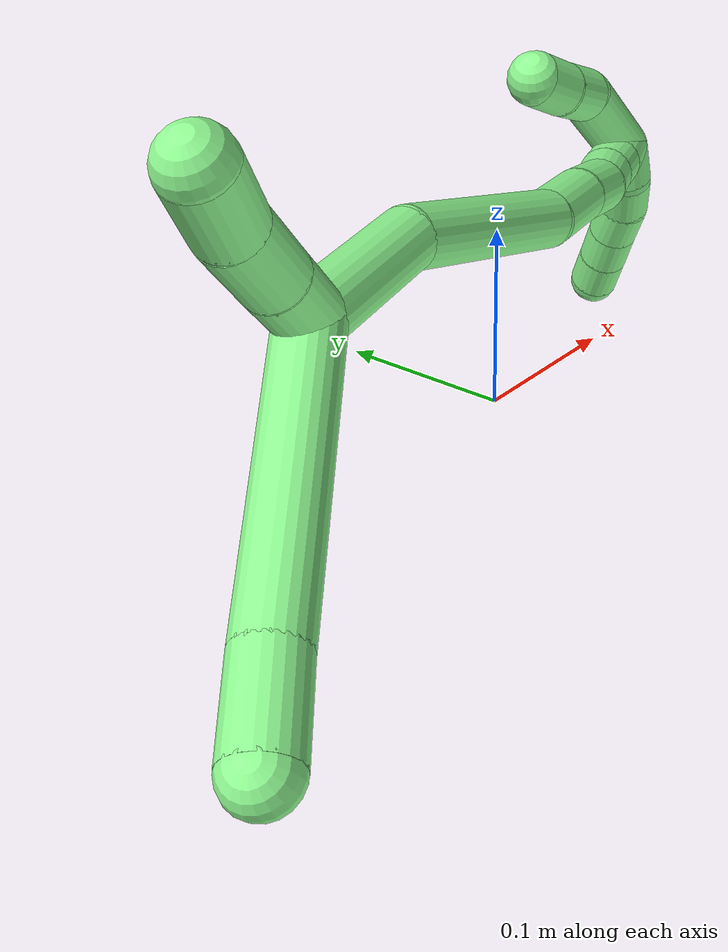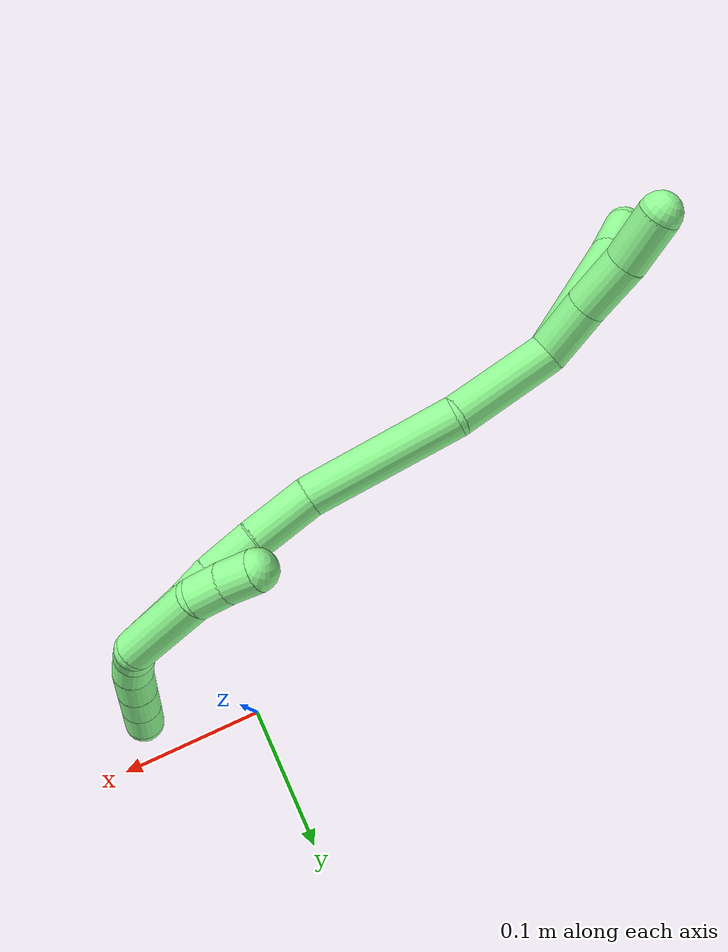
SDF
<sdf version="1.7">
 <world name="default">
  <model name="13">
   <static>0</static>
   <link name="13">
    <collision name="collision-cylinder-e_1_2_8">
     <pose>-0.038521 -0.042957 0.004846 1.45845 -0.727864 -0.65609</pose>
     <geometry><cylinder><radius>0.0125</radius><length>0.115803</length></cylinder></geometry>
     <surface>
      <friction><ode><mu>1.16</mu><mu2>1.16</mu2><slip1>0</slip1><slip2>0</slip2></ode></friction>
      <contact><ode><kp>1e+06</kp><kd>1</kd><max_vel>0</max_vel><min_depth>0.001</min_depth></ode></contact>
     </surface>
    </collision>
    <visual name="visual-cylinder-e_1_2_8">
     <pose>-0.038521 -0.042957 0.004846 1.45845 -0.727864 -0.65609</pose>
     <geometry><cylinder><radius>0.0125</radius><length>0.115803</length></cylinder></geometry>
     <material><ambient>0.564706 0.984314 0.572549 1</ambient></material>
    </visual>
    <collision name="collision-cylinder-e_2_8_6">
     <pose>-0.087606 -0.099129 0.012162 1.38608 -0.666024 -0.559441</pose>
     <geometry><cylinder><radius>0.0125</radius><length>0.034197</length></cylinder></geometry>
     <surface>
      <friction><ode><mu>1.16</mu><mu2>1.16</mu2><slip1>0</slip1><slip2>0</slip2></ode></friction>
      <contact><ode><kp>1e+06</kp><kd>1</kd><max_vel>0</max_vel><min_depth>0.001</min_depth></ode></contact>
     </surface>
    </collision>
    <visual name="visual-cylinder-e_2_8_6">
     <pose>-0.087606 -0.099129 0.012162 1.38608 -0.666024 -0.559441</pose>
     <geometry><cylinder><radius>0.0125</radius><length>0.034197</length></cylinder></geometry>
     <material><ambient>0.564706 0.984314 0.572549 1</ambient></material>
    </visual>
    <collision name="collision-cylinder-e_1_2_9">
     <pose>-0.003287 -0.002539 0.017444 0.144521 -0.184344 -0.013382</pose>
     <geometry><cylinder><radius>0.0125</radius><length>0.035863</length></cylinder></geometry>
     <surface>
      <friction><ode><mu>1.16</mu><mu2>1.16</mu2><slip1>0</slip1><slip2>0</slip2></ode></friction>
      <contact><ode><kp>1e+06</kp><kd>1</kd><max_vel>0</max_vel><min_depth>0.001</min_depth></ode></contact>
     </surface>
    </collision>
    <visual name="visual-cylinder-e_1_2_9">
     <pose>-0.003287 -0.002539 0.017444 0.144521 -0.184344 -0.013382</pose>
     <geometry><cylinder><radius>0.0125</radius><length>0.035863</length></cylinder></geometry>
     <material><ambient>0.564706 0.984314 0.572549 1</ambient></material>
    </visual>
    <collision name="collision-cylinder-e_2_9_10">
     <pose>-0.009419 -0.006326 0.051171 0.076524 -0.172523 -0.006621</pose>
     <geometry><cylinder><radius>0.0125</radius><length>0.033154</length></cylinder></geometry>
     <surface>
      <friction><ode><mu>1.16</mu><mu2>1.16</mu2><slip1>0</slip1><slip2>0</slip2></ode></friction>
      <contact><ode><kp>1e+06</kp><kd>1</kd><max_vel>0</max_vel><min_depth>0.001</min_depth></ode></contact>
     </surface>
    </collision>
    <visual name="visual-cylinder-e_2_9_10">
     <pose>-0.009419 -0.006326 0.051171 0.076524 -0.172523 -0.006621</pose>
     <geometry><cylinder><radius>0.0125</radius><length>0.033154</length></cylinder></geometry>
     <material><ambient>0.564706 0.984314 0.572549 1</ambient></material>
    </visual>
    <collision name="collision-cylinder-e_3_10_5">
     <pose>-0.012841 -0.009142 0.082855 0.101414 -0.037203 -0.001888</pose>
     <geometry><cylinder><radius>0.0125</radius><length>0.030983</length></cylinder></geometry>
     <surface>
      <friction><ode><mu>1.16</mu><mu2>1.16</mu2><slip1>0</slip1><slip2>0</slip2></ode></friction>
      <contact><ode><kp>1e+06</kp><kd>1</kd><max_vel>0</max_vel><min_depth>0.001</min_depth></ode></contact>
     </surface>
    </collision>
    <visual name="visual-cylinder-e_3_10_5">
     <pose>-0.012841 -0.009142 0.082855 0.101414 -0.037203 -0.001888</pose>
     <geometry><cylinder><radius>0.0125</radius><length>0.030983</length></cylinder></geometry>
     <material><ambient>0.564706 0.984314 0.572549 1</ambient></material>
    </visual>
    <collision name="collision-cylinder-e_1_2_11">
     <pose>0.0267 0.012579 -0.016906 -2.5019 0.902651 -1.94265</pose>
     <geometry><cylinder><radius>0.0125</radius><length>0.068029</length></cylinder></geometry>
     <surface>
      <friction><ode><mu>1.16</mu><mu2>1.16</mu2><slip1>0</slip1><slip2>0</slip2></ode></friction>
      <contact><ode><kp>1e+06</kp><kd>1</kd><max_vel>0</max_vel><min_depth>0.001</min_depth></ode></contact>
     </surface>
    </collision>
    <visual name="visual-cylinder-e_1_2_11">
     <pose>0.0267 0.012579 -0.016906 -2.5019 0.902651 -1.94265</pose>
     <geometry><cylinder><radius>0.0125</radius><length>0.068029</length></cylinder></geometry>
     <material><ambient>0.564706 0.984314 0.572549 1</ambient></material>
    </visual>
    <collision name="collision-cylinder-e_2_11_12">
     <pose>0.087948 0.031241 -0.067628 -2.96363 0.788142 -2.71888</pose>
     <geometry><cylinder><radius>0.0125</radius><length>0.097448</length></cylinder></geometry>
     <surface>
      <friction><ode><mu>1.16</mu><mu2>1.16</mu2><slip1>0</slip1><slip2>0</slip2></ode></friction>
      <contact><ode><kp>1e+06</kp><kd>1</kd><max_vel>0</max_vel><min_depth>0.001</min_depth></ode></contact>
     </surface>
    </collision>
    <visual name="visual-cylinder-e_2_11_12">
     <pose>0.087948 0.031241 -0.067628 -2.96363 0.788142 -2.71888</pose>
     <geometry><cylinder><radius>0.0125</radius><length>0.097448</length></cylinder></geometry>
     <material><ambient>0.564706 0.984314 0.572549 1</ambient></material>
    </visual>
    <collision name="collision-cylinder-e_3_12_13">
     <pose>0.136946 0.04464 -0.113691 -2.60308 0.791836 -1.97456</pose>
     <geometry><cylinder><radius>0.0125</radius><length>0.040612</length></cylinder></geometry>
     <surface>
      <friction><ode><mu>1.16</mu><mu2>1.16</mu2><slip1>0</slip1><slip2>0</slip2></ode></friction>
      <contact><ode><kp>1e+06</kp><kd>1</kd><max_vel>0</max_vel><min_depth>0.001</min_depth></ode></contact>
     </surface>
    </collision>
    <visual name="visual-cylinder-e_3_12_13">
     <pose>0.136946 0.04464 -0.113691 -2.60308 0.791836 -1.97456</pose>
     <geometry><cylinder><radius>0.0125</radius><length>0.040612</length></cylinder></geometry>
     <material><ambient>0.564706 0.984314 0.572549 1</ambient></material>
    </visual>
    <collision name="collision-cylinder-e_4_13_14">
     <pose>0.161899 0.057406 -0.136722 -2.67367 0.715551 -2.00657</pose>
     <geometry><cylinder><radius>0.0125</radius><length>0.03202</length></cylinder></geometry>
     <surface>
      <friction><ode><mu>1.16</mu><mu2>1.16</mu2><slip1>0</slip1><slip2>0</slip2></ode></friction>
      <contact><ode><kp>1e+06</kp><kd>1</kd><max_vel>0</max_vel><min_depth>0.001</min_depth></ode></contact>
     </surface>
    </collision>
    <visual name="visual-cylinder-e_4_13_14">
     <pose>0.161899 0.057406 -0.136722 -2.67367 0.715551 -2.00657</pose>
     <geometry><cylinder><radius>0.0125</radius><length>0.03202</length></cylinder></geometry>
     <material><ambient>0.564706 0.984314 0.572549 1</ambient></material>
    </visual>
    <collision name="collision-cylinder-e_5_14_15">
     <pose>0.178972 0.068109 -0.153437 -2.41668 0.692307 -1.5207</pose>
     <geometry><cylinder><radius>0.0125</radius><length>0.020584</length></cylinder></geometry>
     <surface>
      <friction><ode><mu>1.16</mu><mu2>1.16</mu2><slip1>0</slip1><slip2>0</slip2></ode></friction>
      <contact><ode><kp>1e+06</kp><kd>1</kd><max_vel>0</max_vel><min_depth>0.001</min_depth></ode></contact>
     </surface>
    </collision>
    <visual name="visual-cylinder-e_5_14_15">
     <pose>0.178972 0.068109 -0.153437 -2.41668 0.692307 -1.5207</pose>
     <geometry><cylinder><radius>0.0125</radius><length>0.020584</length></cylinder></geometry>
     <material><ambient>0.564706 0.984314 0.572549 1</ambient></material>
    </visual>
    <collision name="collision-cylinder-e_6_15_16">
     <pose>0.192472 0.078028 -0.165099 -2.45838 0.75332 -1.67721</pose>
     <geometry><cylinder><radius>0.0125</radius><length>0.020264</length></cylinder></geometry>
     <surface>
      <friction><ode><mu>1.16</mu><mu2>1.16</mu2><slip1>0</slip1><slip2>0</slip2></ode></friction>
      <contact><ode><kp>1e+06</kp><kd>1</kd><max_vel>0</max_vel><min_depth>0.001</min_depth></ode></contact>
     </surface>
    </collision>
    <visual name="visual-cylinder-e_6_15_16">
     <pose>0.192472 0.078028 -0.165099 -2.45838 0.75332 -1.67721</pose>
     <geometry><cylinder><radius>0.0125</radius><length>0.020264</length></cylinder></geometry>
     <material><ambient>0.564706 0.984314 0.572549 1</ambient></material>
    </visual>
    <collision name="collision-cylinder-e_7_16_1">
     <pose>0.206974 0.088133 -0.175709 -2.30191 0.80309 -1.52083</pose>
     <geometry><cylinder><radius>0.0125</radius><length>0.021044</length></cylinder></geometry>
     <surface>
      <friction><ode><mu>1.16</mu><mu2>1.16</mu2><slip1>0</slip1><slip2>0</slip2></ode></friction>
      <contact><ode><kp>1e+06</kp><kd>1</kd><max_vel>0</max_vel><min_depth>0.001</min_depth></ode></contact>
     </surface>
    </collision>
    <visual name="visual-cylinder-e_7_16_1">
     <pose>0.206974 0.088133 -0.175709 -2.30191 0.80309 -1.52083</pose>
     <geometry><cylinder><radius>0.0125</radius><length>0.021044</length></cylinder></geometry>
     <material><ambient>0.564706 0.984314 0.572549 1</ambient></material>
    </visual>
    <collision name="collision-cylinder-e_1_1_17">
     <pose>0.204433 0.09265 -0.152742 0.033159 -0.348158 -0.005832</pose>
     <geometry><cylinder><radius>0.0125</radius><length>0.05928</length></cylinder></geometry>
     <surface>
      <friction><ode><mu>1.16</mu><mu2>1.16</mu2><slip1>0</slip1><slip2>0</slip2></ode></friction>
      <contact><ode><kp>1e+06</kp><kd>1</kd><max_vel>0</max_vel><min_depth>0.001</min_depth></ode></contact>
     </surface>
    </collision>
    <visual name="visual-cylinder-e_1_1_17">
     <pose>0.204433 0.09265 -0.152742 0.033159 -0.348158 -0.005832</pose>
     <geometry><cylinder><radius>0.0125</radius><length>0.05928</length></cylinder></geometry>
     <material><ambient>0.564706 0.984314 0.572549 1</ambient></material>
    </visual>
    <collision name="collision-cylinder-e_2_17_18">
     <pose>0.187803 0.091367 -0.117067 0.045851 -0.693702 -0.016576</pose>
     <geometry><cylinder><radius>0.0125</radius><length>0.020386</length></cylinder></geometry>
     <surface>
      <friction><ode><mu>1.16</mu><mu2>1.16</mu2><slip1>0</slip1><slip2>0</slip2></ode></friction>
      <contact><ode><kp>1e+06</kp><kd>1</kd><max_vel>0</max_vel><min_depth>0.001</min_depth></ode></contact>
     </surface>
    </collision>
    <visual name="visual-cylinder-e_2_17_18">
     <pose>0.187803 0.091367 -0.117067 0.045851 -0.693702 -0.016576</pose>
     <geometry><cylinder><radius>0.0125</radius><length>0.020386</length></cylinder></geometry>
     <material><ambient>0.564706 0.984314 0.572549 1</ambient></material>
    </visual>
    <collision name="collision-cylinder-e_3_18_4">
     <pose>0.175097 0.09182 -0.101212 -0.100902 -0.654378 0.03427</pose>
     <geometry><cylinder><radius>0.0125</radius><length>0.020334</length></cylinder></geometry>
     <surface>
      <friction><ode><mu>1.16</mu><mu2>1.16</mu2><slip1>0</slip1><slip2>0</slip2></ode></friction>
      <contact><ode><kp>1e+06</kp><kd>1</kd><max_vel>0</max_vel><min_depth>0.001</min_depth></ode></contact>
     </surface>
    </collision>
    <visual name="visual-cylinder-e_3_18_4">
     <pose>0.175097 0.09182 -0.101212 -0.100902 -0.654378 0.03427</pose>
     <geometry><cylinder><radius>0.0125</radius><length>0.020334</length></cylinder></geometry>
     <material><ambient>0.564706 0.984314 0.572549 1</ambient></material>
    </visual>
    <collision name="collision-cylinder-e_1_1_19">
     <pose>0.212486 0.09116 -0.190072 2.89241 -0.207389 -1.38666</pose>
     <geometry><cylinder><radius>0.0125</radius><length>0.02</length></cylinder></geometry>
     <surface>
      <friction><ode><mu>1.16</mu><mu2>1.16</mu2><slip1>0</slip1><slip2>0</slip2></ode></friction>
      <contact><ode><kp>1e+06</kp><kd>1</kd><max_vel>0</max_vel><min_depth>0.001</min_depth></ode></contact>
     </surface>
    </collision>
    <visual name="visual-cylinder-e_1_1_19">
     <pose>0.212486 0.09116 -0.190072 2.89241 -0.207389 -1.38666</pose>
     <geometry><cylinder><radius>0.0125</radius><length>0.02</length></cylinder></geometry>
     <material><ambient>0.564706 0.984314 0.572549 1</ambient></material>
    </visual>
    <collision name="collision-cylinder-e_2_19_20">
     <pose>0.208695 0.089111 -0.209398 -3.1046 -0.174036 2.72374</pose>
     <geometry><cylinder><radius>0.0125</radius><length>0.02</length></cylinder></geometry>
     <surface>
      <friction><ode><mu>1.16</mu><mu2>1.16</mu2><slip1>0</slip1><slip2>0</slip2></ode></friction>
      <contact><ode><kp>1e+06</kp><kd>1</kd><max_vel>0</max_vel><min_depth>0.001</min_depth></ode></contact>
     </surface>
    </collision>
    <visual name="visual-cylinder-e_2_19_20">
     <pose>0.208695 0.089111 -0.209398 -3.1046 -0.174036 2.72374</pose>
     <geometry><cylinder><radius>0.0125</radius><length>0.02</length></cylinder></geometry>
     <material><ambient>0.564706 0.984314 0.572549 1</ambient></material>
    </visual>
    <collision name="collision-cylinder-e_3_20_21">
     <pose>0.203744 0.09133 -0.228524 -2.94444 -0.327732 2.06352</pose>
     <geometry><cylinder><radius>0.0125</radius><length>0.02</length></cylinder></geometry>
     <surface>
      <friction><ode><mu>1.16</mu><mu2>1.16</mu2><slip1>0</slip1><slip2>0</slip2></ode></friction>
      <contact><ode><kp>1e+06</kp><kd>1</kd><max_vel>0</max_vel><min_depth>0.001</min_depth></ode></contact>
     </surface>
    </collision>
    <visual name="visual-cylinder-e_3_20_21">
     <pose>0.203744 0.09133 -0.228524 -2.94444 -0.327732 2.06352</pose>
     <geometry><cylinder><radius>0.0125</radius><length>0.02</length></cylinder></geometry>
     <material><ambient>0.564706 0.984314 0.572549 1</ambient></material>
    </visual>
    <collision name="collision-cylinder-e_4_21_22">
     <pose>0.197248 0.094687 -0.247136 -2.98185 -0.33395 2.25484</pose>
     <geometry><cylinder><radius>0.0125</radius><length>0.02</length></cylinder></geometry>
     <surface>
      <friction><ode><mu>1.16</mu><mu2>1.16</mu2><slip1>0</slip1><slip2>0</slip2></ode></friction>
      <contact><ode><kp>1e+06</kp><kd>1</kd><max_vel>0</max_vel><min_depth>0.001</min_depth></ode></contact>
     </surface>
    </collision>
    <visual name="visual-cylinder-e_4_21_22">
     <pose>0.197248 0.094687 -0.247136 -2.98185 -0.33395 2.25484</pose>
     <geometry><cylinder><radius>0.0125</radius><length>0.02</length></cylinder></geometry>
     <material><ambient>0.564706 0.984314 0.572549 1</ambient></material>
    </visual>
    <collision name="collision-cylinder-e_5_22_3">
     <pose>0.190816 0.09786 -0.265805 -2.96467 -0.320897 2.13895</pose>
     <geometry><cylinder><radius>0.0125</radius><length>0.02</length></cylinder></geometry>
     <surface>
      <friction><ode><mu>1.16</mu><mu2>1.16</mu2><slip1>0</slip1><slip2>0</slip2></ode></friction>
      <contact><ode><kp>1e+06</kp><kd>1</kd><max_vel>0</max_vel><min_depth>0.001</min_depth></ode></contact>
     </surface>
    </collision>
    <visual name="visual-cylinder-e_5_22_3">
     <pose>0.190816 0.09786 -0.265805 -2.96467 -0.320897 2.13895</pose>
     <geometry><cylinder><radius>0.0125</radius><length>0.02</length></cylinder></geometry>
     <material><ambient>0.564706 0.984314 0.572549 1</ambient></material>
    </visual>
    <collision name="collision-sphere-3">
     <pose>0.187662 0.09953 -0.275146 0 -0 0</pose>
     <geometry><sphere><radius>0.0125</radius></sphere></geometry>
     <surface>
      <friction><ode><mu>1.16</mu><mu2>1.16</mu2><slip1>0</slip1><slip2>0</slip2></ode></friction>
      <contact><ode><kp>1e+06</kp><kd>1</kd><max_vel>0</max_vel><min_depth>0.001</min_depth></ode></contact>
     </surface>
    </collision>
    <visual name="visual-sphere-3">
     <pose>0.187662 0.09953 -0.275146 0 -0 0</pose>
     <geometry><sphere><radius>0.0125</radius></sphere></geometry>
     <material><ambient>0.564706 0.984314 0.572549 1</ambient></material>
    </visual>
    <collision name="collision-sphere-22">
     <pose>0.19397 0.09619 -0.256463 0 -0 0</pose>
     <geometry><sphere><radius>0.0125</radius></sphere></geometry>
     <surface>
      <friction><ode><mu>1.16</mu><mu2>1.16</mu2><slip1>0</slip1><slip2>0</slip2></ode></friction>
      <contact><ode><kp>1e+06</kp><kd>1</kd><max_vel>0</max_vel><min_depth>0.001</min_depth></ode></contact>
     </surface>
    </collision>
    <visual name="visual-sphere-22">
     <pose>0.19397 0.09619 -0.256463 0 -0 0</pose>
     <geometry><sphere><radius>0.0125</radius></sphere></geometry>
     <material><ambient>0.564706 0.984314 0.572549 1</ambient></material>
    </visual>
    <collision name="collision-sphere-21">
     <pose>0.200526 0.093184 -0.237809 0 -0 0</pose>
     <geometry><sphere><radius>0.0125</radius></sphere></geometry>
     <surface>
      <friction><ode><mu>1.16</mu><mu2>1.16</mu2><slip1>0</slip1><slip2>0</slip2></ode></friction>
      <contact><ode><kp>1e+06</kp><kd>1</kd><max_vel>0</max_vel><min_depth>0.001</min_depth></ode></contact>
     </surface>
    </collision>
    <visual name="visual-sphere-21">
     <pose>0.200526 0.093184 -0.237809 0 -0 0</pose>
     <geometry><sphere><radius>0.0125</radius></sphere></geometry>
     <material><ambient>0.564706 0.984314 0.572549 1</ambient></material>
    </visual>
    <collision name="collision-sphere-20">
     <pose>0.206963 0.089475 -0.21924 0 -0 0</pose>
     <geometry><sphere><radius>0.0125</radius></sphere></geometry>
     <surface>
      <friction><ode><mu>1.16</mu><mu2>1.16</mu2><slip1>0</slip1><slip2>0</slip2></ode></friction>
      <contact><ode><kp>1e+06</kp><kd>1</kd><max_vel>0</max_vel><min_depth>0.001</min_depth></ode></contact>
     </surface>
    </collision>
    <visual name="visual-sphere-20">
     <pose>0.206963 0.089475 -0.21924 0 -0 0</pose>
     <geometry><sphere><radius>0.0125</radius></sphere></geometry>
     <material><ambient>0.564706 0.984314 0.572549 1</ambient></material>
    </visual>
    <collision name="collision-sphere-19">
     <pose>0.210427 0.088747 -0.199556 0 -0 0</pose>
     <geometry><sphere><radius>0.0125</radius></sphere></geometry>
     <surface>
      <friction><ode><mu>1.16</mu><mu2>1.16</mu2><slip1>0</slip1><slip2>0</slip2></ode></friction>
      <contact><ode><kp>1e+06</kp><kd>1</kd><max_vel>0</max_vel><min_depth>0.001</min_depth></ode></contact>
     </surface>
    </collision>
    <visual name="visual-sphere-19">
     <pose>0.210427 0.088747 -0.199556 0 -0 0</pose>
     <geometry><sphere><radius>0.0125</radius></sphere></geometry>
     <material><ambient>0.564706 0.984314 0.572549 1</ambient></material>
    </visual>
    <collision name="collision-sphere-5">
     <pose>-0.013418 -0.010709 0.098257 0 -0 0</pose>
     <geometry><sphere><radius>0.0125</radius></sphere></geometry>
     <surface>
      <friction><ode><mu>1.16</mu><mu2>1.16</mu2><slip1>0</slip1><slip2>0</slip2></ode></friction>
      <contact><ode><kp>1e+06</kp><kd>1</kd><max_vel>0</max_vel><min_depth>0.001</min_depth></ode></contact>
     </surface>
    </collision>
    <visual name="visual-sphere-5">
     <pose>-0.013418 -0.010709 0.098257 0 -0 0</pose>
     <geometry><sphere><radius>0.0125</radius></sphere></geometry>
     <material><ambient>0.564706 0.984314 0.572549 1</ambient></material>
    </visual>
    <collision name="collision-sphere-10">
     <pose>-0.012265 -0.007574 0.067454 0 -0 0</pose>
     <geometry><sphere><radius>0.0125</radius></sphere></geometry>
     <surface>
      <friction><ode><mu>1.16</mu><mu2>1.16</mu2><slip1>0</slip1><slip2>0</slip2></ode></friction>
      <contact><ode><kp>1e+06</kp><kd>1</kd><max_vel>0</max_vel><min_depth>0.001</min_depth></ode></contact>
     </surface>
    </collision>
    <visual name="visual-sphere-10">
     <pose>-0.012265 -0.007574 0.067454 0 -0 0</pose>
     <geometry><sphere><radius>0.0125</radius></sphere></geometry>
     <material><ambient>0.564706 0.984314 0.572549 1</ambient></material>
    </visual>
    <collision name="collision-sphere-6">
     <pose>-0.09817 -0.112344 0.014631 0 -0 0</pose>
     <geometry><sphere><radius>0.0125</radius></sphere></geometry>
     <surface>
      <friction><ode><mu>1.16</mu><mu2>1.16</mu2><slip1>0</slip1><slip2>0</slip2></ode></friction>
      <contact><ode><kp>1e+06</kp><kd>1</kd><max_vel>0</max_vel><min_depth>0.001</min_depth></ode></contact>
     </surface>
    </collision>
    <visual name="visual-sphere-6">
     <pose>-0.09817 -0.112344 0.014631 0 -0 0</pose>
     <geometry><sphere><radius>0.0125</radius></sphere></geometry>
     <material><ambient>0.564706 0.984314 0.572549 1</ambient></material>
    </visual>
    <collision name="collision-sphere-9">
     <pose>-0.006574 -0.005077 0.034888 0 -0 0</pose>
     <geometry><sphere><radius>0.0125</radius></sphere></geometry>
     <surface>
      <friction><ode><mu>1.16</mu><mu2>1.16</mu2><slip1>0</slip1><slip2>0</slip2></ode></friction>
      <contact><ode><kp>1e+06</kp><kd>1</kd><max_vel>0</max_vel><min_depth>0.001</min_depth></ode></contact>
     </surface>
    </collision>
    <visual name="visual-sphere-9">
     <pose>-0.006574 -0.005077 0.034888 0 -0 0</pose>
     <geometry><sphere><radius>0.0125</radius></sphere></geometry>
     <material><ambient>0.564706 0.984314 0.572549 1</ambient></material>
    </visual>
    <collision name="collision-sphere-2">
     <geometry><sphere><radius>0.0125</radius></sphere></geometry>
     <surface>
      <friction><ode><mu>1.16</mu><mu2>1.16</mu2><slip1>0</slip1><slip2>0</slip2></ode></friction>
      <contact><ode><kp>1e+06</kp><kd>1</kd><max_vel>0</max_vel><min_depth>0.001</min_depth></ode></contact>
     </surface>
    </collision>
    <visual name="visual-sphere-2">
     <geometry><sphere><radius>0.0125</radius></sphere></geometry>
     <material><ambient>0.564706 0.984314 0.572549 1</ambient></material>
    </visual>
    <collision name="collision-sphere-8">
     <pose>-0.077041 -0.085913 0.009693 0 -0 0</pose>
     <geometry><sphere><radius>0.0125</radius></sphere></geometry>
     <surface>
      <friction><ode><mu>1.16</mu><mu2>1.16</mu2><slip1>0</slip1><slip2>0</slip2></ode></friction>
      <contact><ode><kp>1e+06</kp><kd>1</kd><max_vel>0</max_vel><min_depth>0.001</min_depth></ode></contact>
     </surface>
    </collision>
    <visual name="visual-sphere-8">
     <pose>-0.077041 -0.085913 0.009693 0 -0 0</pose>
     <geometry><sphere><radius>0.0125</radius></sphere></geometry>
     <material><ambient>0.564706 0.984314 0.572549 1</ambient></material>
    </visual>
    <collision name="collision-sphere-11">
     <pose>0.053401 0.025159 -0.033813 0 -0 0</pose>
     <geometry><sphere><radius>0.0125</radius></sphere></geometry>
     <surface>
      <friction><ode><mu>1.16</mu><mu2>1.16</mu2><slip1>0</slip1><slip2>0</slip2></ode></friction>
      <contact><ode><kp>1e+06</kp><kd>1</kd><max_vel>0</max_vel><min_depth>0.001</min_depth></ode></contact>
     </surface>
    </collision>
    <visual name="visual-sphere-11">
     <pose>0.053401 0.025159 -0.033813 0 -0 0</pose>
     <geometry><sphere><radius>0.0125</radius></sphere></geometry>
     <material><ambient>0.564706 0.984314 0.572549 1</ambient></material>
    </visual>
    <collision name="collision-sphere-12">
     <pose>0.122495 0.037324 -0.101444 0 -0 0</pose>
     <geometry><sphere><radius>0.0125</radius></sphere></geometry>
     <surface>
      <friction><ode><mu>1.16</mu><mu2>1.16</mu2><slip1>0</slip1><slip2>0</slip2></ode></friction>
      <contact><ode><kp>1e+06</kp><kd>1</kd><max_vel>0</max_vel><min_depth>0.001</min_depth></ode></contact>
     </surface>
    </collision>
    <visual name="visual-sphere-12">
     <pose>0.122495 0.037324 -0.101444 0 -0 0</pose>
     <geometry><sphere><radius>0.0125</radius></sphere></geometry>
     <material><ambient>0.564706 0.984314 0.572549 1</ambient></material>
    </visual>
    <collision name="collision-sphere-13">
     <pose>0.151396 0.051956 -0.125937 0 -0 0</pose>
     <geometry><sphere><radius>0.0125</radius></sphere></geometry>
     <surface>
      <friction><ode><mu>1.16</mu><mu2>1.16</mu2><slip1>0</slip1><slip2>0</slip2></ode></friction>
      <contact><ode><kp>1e+06</kp><kd>1</kd><max_vel>0</max_vel><min_depth>0.001</min_depth></ode></contact>
     </surface>
    </collision>
    <visual name="visual-sphere-13">
     <pose>0.151396 0.051956 -0.125937 0 -0 0</pose>
     <geometry><sphere><radius>0.0125</radius></sphere></geometry>
     <material><ambient>0.564706 0.984314 0.572549 1</ambient></material>
    </visual>
    <collision name="collision-sphere-14">
     <pose>0.172402 0.062856 -0.147506 0 -0 0</pose>
     <geometry><sphere><radius>0.0125</radius></sphere></geometry>
     <surface>
      <friction><ode><mu>1.16</mu><mu2>1.16</mu2><slip1>0</slip1><slip2>0</slip2></ode></friction>
      <contact><ode><kp>1e+06</kp><kd>1</kd><max_vel>0</max_vel><min_depth>0.001</min_depth></ode></contact>
     </surface>
    </collision>
    <visual name="visual-sphere-14">
     <pose>0.172402 0.062856 -0.147506 0 -0 0</pose>
     <geometry><sphere><radius>0.0125</radius></sphere></geometry>
     <material><ambient>0.564706 0.984314 0.572549 1</ambient></material>
    </visual>
    <collision name="collision-sphere-15">
     <pose>0.185542 0.073363 -0.159367 0 -0 0</pose>
     <geometry><sphere><radius>0.0125</radius></sphere></geometry>
     <surface>
      <friction><ode><mu>1.16</mu><mu2>1.16</mu2><slip1>0</slip1><slip2>0</slip2></ode></friction>
      <contact><ode><kp>1e+06</kp><kd>1</kd><max_vel>0</max_vel><min_depth>0.001</min_depth></ode></contact>
     </surface>
    </collision>
    <visual name="visual-sphere-15">
     <pose>0.185542 0.073363 -0.159367 0 -0 0</pose>
     <geometry><sphere><radius>0.0125</radius></sphere></geometry>
     <material><ambient>0.564706 0.984314 0.572549 1</ambient></material>
    </visual>
    <collision name="collision-sphere-16">
     <pose>0.199403 0.082693 -0.17083 0 -0 0</pose>
     <geometry><sphere><radius>0.0125</radius></sphere></geometry>
     <surface>
      <friction><ode><mu>1.16</mu><mu2>1.16</mu2><slip1>0</slip1><slip2>0</slip2></ode></friction>
      <contact><ode><kp>1e+06</kp><kd>1</kd><max_vel>0</max_vel><min_depth>0.001</min_depth></ode></contact>
     </surface>
    </collision>
    <visual name="visual-sphere-16">
     <pose>0.199403 0.082693 -0.17083 0 -0 0</pose>
     <geometry><sphere><radius>0.0125</radius></sphere></geometry>
     <material><ambient>0.564706 0.984314 0.572549 1</ambient></material>
    </visual>
    <collision name="collision-sphere-1">
     <pose>0.214545 0.093573 -0.180589 0 -0 0</pose>
     <geometry><sphere><radius>0.0125</radius></sphere></geometry>
     <surface>
      <friction><ode><mu>1.16</mu><mu2>1.16</mu2><slip1>0</slip1><slip2>0</slip2></ode></friction>
      <contact><ode><kp>1e+06</kp><kd>1</kd><max_vel>0</max_vel><min_depth>0.001</min_depth></ode></contact>
     </surface>
    </collision>
    <visual name="visual-sphere-1">
     <pose>0.214545 0.093573 -0.180589 0 -0 0</pose>
     <geometry><sphere><radius>0.0125</radius></sphere></geometry>
     <material><ambient>0.564706 0.984314 0.572549 1</ambient></material>
    </visual>
    <collision name="collision-sphere-18">
     <pose>0.181286 0.091008 -0.109238 0 -0 0</pose>
     <geometry><sphere><radius>0.0125</radius></sphere></geometry>
     <surface>
      <friction><ode><mu>1.16</mu><mu2>1.16</mu2><slip1>0</slip1><slip2>0</slip2></ode></friction>
      <contact><ode><kp>1e+06</kp><kd>1</kd><max_vel>0</max_vel><min_depth>0.001</min_depth></ode></contact>
     </surface>
    </collision>
    <visual name="visual-sphere-18">
     <pose>0.181286 0.091008 -0.109238 0 -0 0</pose>
     <geometry><sphere><radius>0.0125</radius></sphere></geometry>
     <material><ambient>0.564706 0.984314 0.572549 1</ambient></material>
    </visual>
    <collision name="collision-sphere-17">
     <pose>0.19432 0.091726 -0.124896 0 -0 0</pose>
     <geometry><sphere><radius>0.0125</radius></sphere></geometry>
     <surface>
      <friction><ode><mu>1.16</mu><mu2>1.16</mu2><slip1>0</slip1><slip2>0</slip2></ode></friction>
      <contact><ode><kp>1e+06</kp><kd>1</kd><max_vel>0</max_vel><min_depth>0.001</min_depth></ode></contact>
     </surface>
    </collision>
    <visual name="visual-sphere-17">
     <pose>0.19432 0.091726 -0.124896 0 -0 0</pose>
     <geometry><sphere><radius>0.0125</radius></sphere></geometry>
     <material><ambient>0.564706 0.984314 0.572549 1</ambient></material>
    </visual>
    <collision name="collision-sphere-4">
     <pose>0.168909 0.092633 -0.093187 0 -0 0</pose>
     <geometry><sphere><radius>0.0125</radius></sphere></geometry>
     <surface>
      <friction><ode><mu>1.16</mu><mu2>1.16</mu2><slip1>0</slip1><slip2>0</slip2></ode></friction>
      <contact><ode><kp>1e+06</kp><kd>1</kd><max_vel>0</max_vel><min_depth>0.001</min_depth></ode></contact>
     </surface>
    </collision>
    <visual name="visual-sphere-4">
     <pose>0.168909 0.092633 -0.093187 0 -0 0</pose>
     <geometry><sphere><radius>0.0125</radius></sphere></geometry>
     <material><ambient>0.564706 0.984314 0.572549 1</ambient></material>
    </visual>
    <inertial>
     <pose>0.086073 0.029261 -0.076518 0 -0 0</pose>
     <mass>0.75</mass>
     <inertia>
      <ixx>-5.8e-05</ixx>
      <ixy>0</ixy>
      <ixz>0</ixz>
      <iyy>0.000102</iyy>
      <iyz>0</iyz>
      <izz>8.5e-05</izz>
     </inertia>
    </inertial>
   </link>
   <pose>-0.250736 -0.106179 0.172366 0.334019 -0.4739 -0.330615</pose>
  </model>
 </world>
</sdf>
